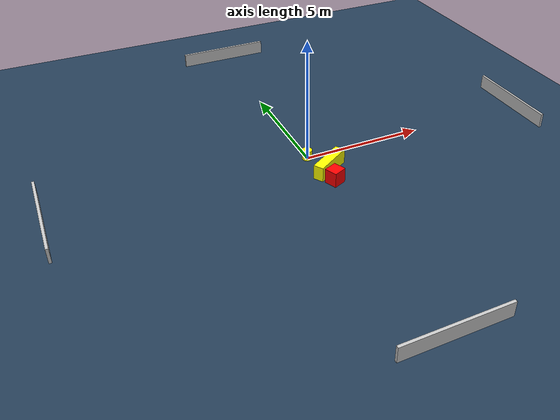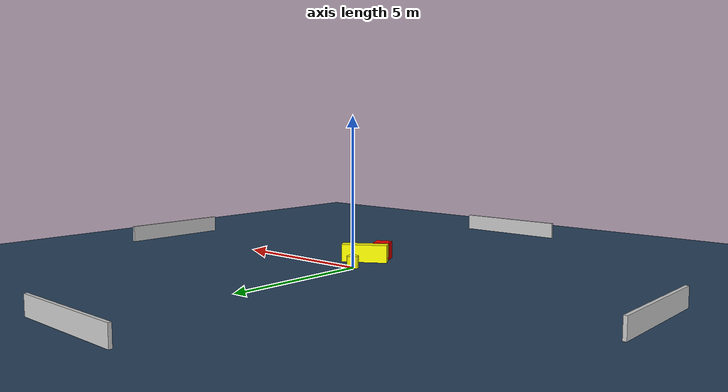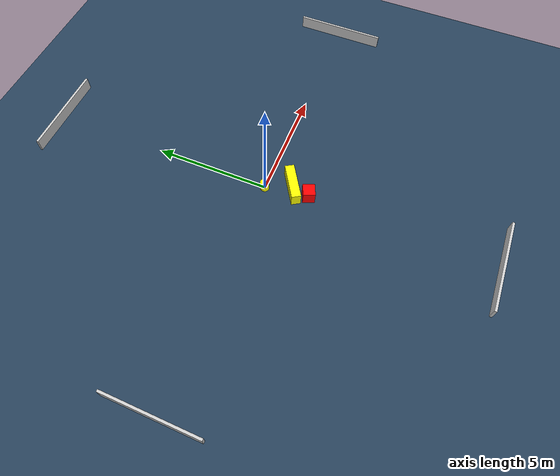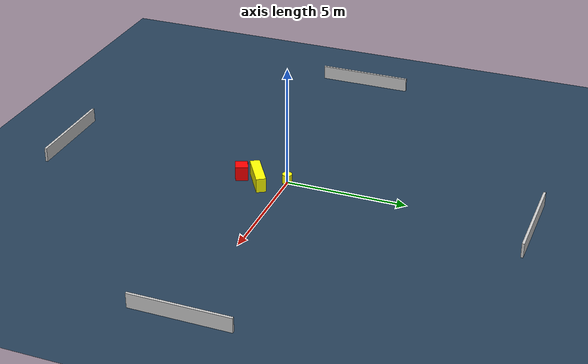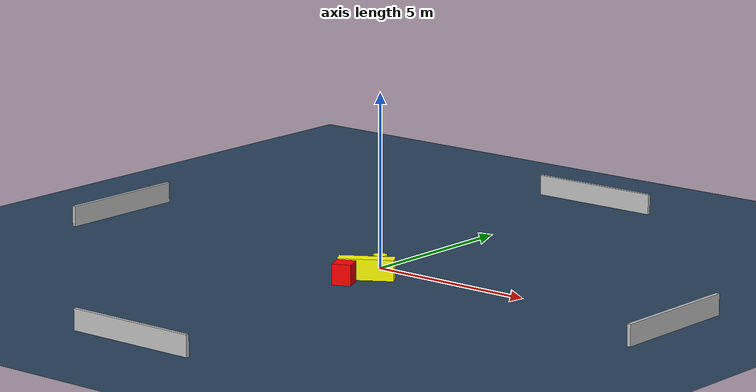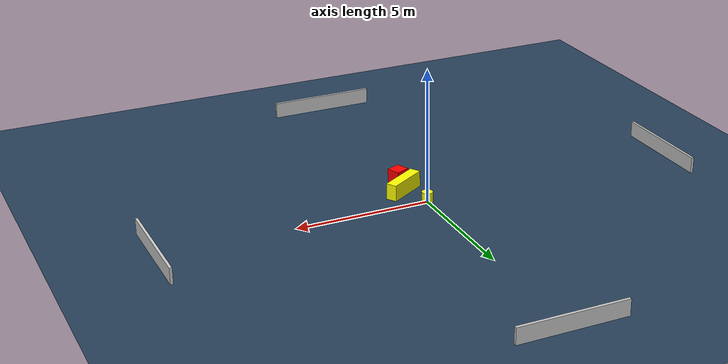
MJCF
<?xml version="1.0" ?>
<mujoco model="generated_environment">
  <option timestep="0.01" integrator="RK4" cone="elliptic"/>
  <default>
    <geom density="1"/>
  </default>
  <asset>
    <texture builtin="gradient" height="3072" name="skybox" rgb1="0.3 0.5 0.7" rgb2="0 0 0" type="skybox" width="512"/>
    <texture builtin="checker" height="300" name="groundplane" rgb1="0.2 0.3 0.4" rgb2="0.1 0.2 0.3" type="2d" width="300"/>
    <material name="groundplane" reflectance="0.2" texrepeat="5 5" texture="groundplane"/>
  </asset>
  <worldbody>
    <light dir="0 0 -1" directional="true" pos="0 0 1.5"/>
    <geom condim="3" friction="0.5 0.005 0.001" material="groundplane" name="floor" pos="0 0 0" size="0 0 0.05" type="plane"/>
    <body name="walls">
      <geom name="wall_1" condim="4" pos="-10.0 0.0 0.3" rgba="0.800000011920929 0.800000011920929 0.800000011920929 1.0" size="0.05 2.0 0.3" type="box"/>
      <geom name="wall_2" condim="4" pos="10.0 0.0 0.3" rgba="0.800000011920929 0.800000011920929 0.800000011920929 1.0" size="0.05 2.0 0.3" type="box"/>
      <geom name="wall_3" condim="4" pos="0.0 -10.0 0.3" rgba="0.800000011920929 0.800000011920929 0.800000011920929 1.0" size="2.0 0.05 0.3" type="box"/>
      <geom name="wall_4" condim="4" pos="0.0 10.0 0.3" rgba="0.800000011920929 0.800000011920929 0.800000011920929 1.0" size="2.0 0.05 0.3" type="box"/>
    </body>
    <body name="robot">
      <joint name="joint_x" type="slide" pos="0 0 0" axis="1 0 0"/>
      <joint name="joint_y" type="slide" pos="0 0 0" axis="0 1 0"/>
      <geom name="robot" type="cylinder" pos="0.0 0.0 0.2" size="0.2 0.2 0.0" mass="5.0" friction="1.0 0.005 0.0001" condim="4" rgba="1.0 1.0 0.0 1.0"/>
    </body>
    <body name="obstacle_1_movable">
      <geom name="obstacle_1_movable" condim="4" pos="0.42767138018773576 -1.1032186640757755 0.3" euler="0 0 301.82103137682583" friction="0.0 0.005 0.001" rgba="1.0 1.0 0.0 1.0" size="0.20294079559633038 0.7893781938550415 0.3" type="box" mass="0.1"/>
      <joint type="free"/>
    </body>
    <body name="obstacle_2_static">
      <geom name="obstacle_2_static" condim="4" pos="0.2789351742510137 -1.88140988600551 0.3" euler="0 0 293.21435267344395" friction="0.0 0.005 0.001" rgba="1.0 0.0 0.0 1.0" size="0.25766840585428497 0.27073232213378123 0.3" type="box"/>
    </body>
  </worldbody>
  <actuator>
    <motor name="actuator_x" joint="joint_x" gear="1" ctrlrange="-1 1"/>
    <motor name="actuator_y" joint="joint_y" gear="1" ctrlrange="-1 1"/>
  </actuator>
</mujoco>
